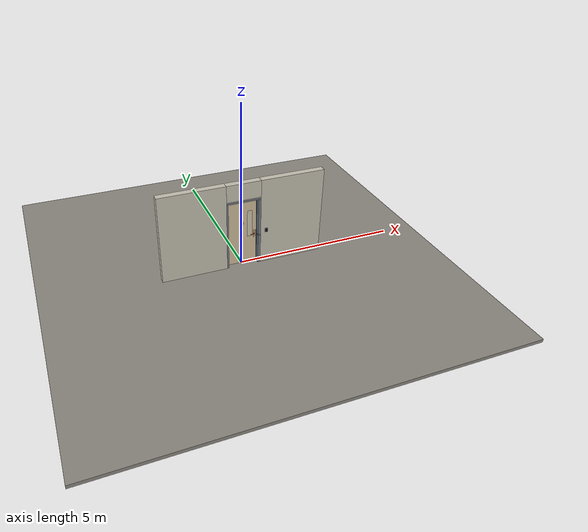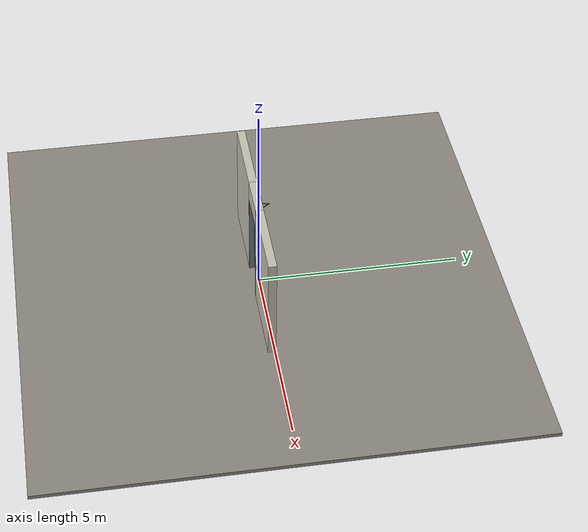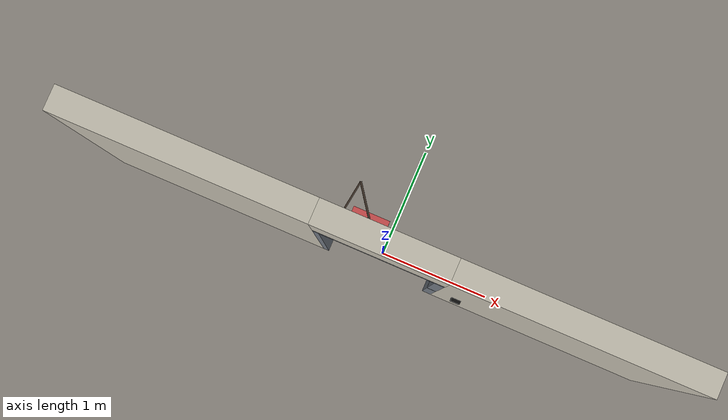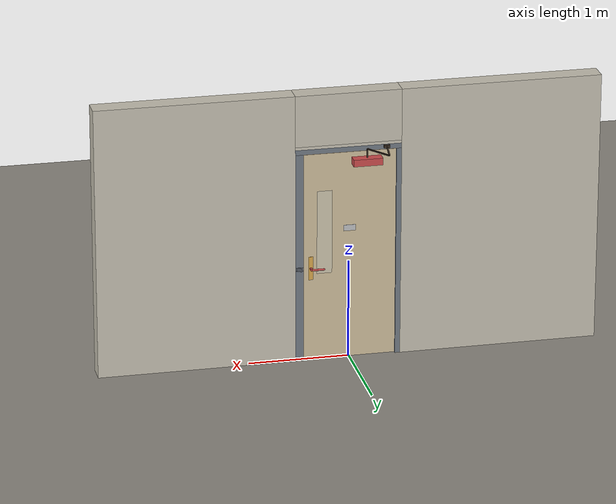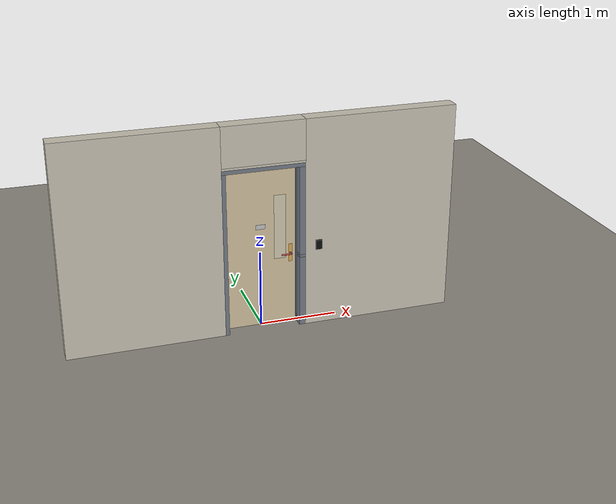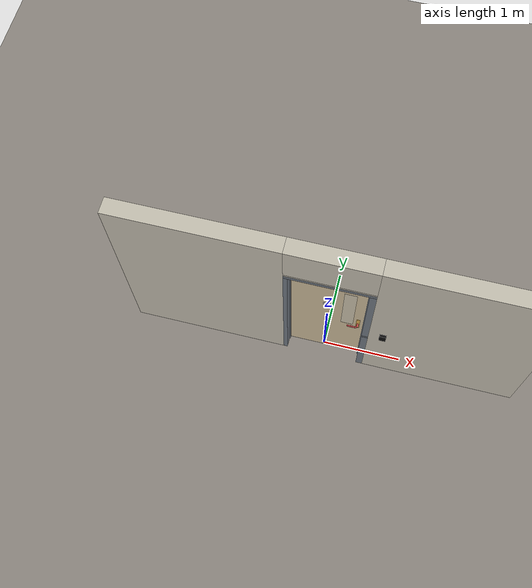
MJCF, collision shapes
<?xml version="1.0" ?>
<mujoco model="db0904_swing_single_full">
  <compiler angle="radian" meshdir="../../hardware" texturedir="../../textures" autolimits="true" inertiafromgeom="false"/>
  <option timestep="0.002" integrator="implicitfast" cone="elliptic" impratio="10" noslip_iterations="3">
    <flag multiccd="enable"/>
  </option>
  <size memory="16M"/>
  <default>
    <geom condim="4" solref="0.005 1" solimp="0.95 0.99 0.001"/>
    <joint solreflimit="0.005 1" solimplimit="0.95 0.99 0.001"/>
    <tendon solreflimit="0.005 1"/>
    <equality solref="0.002 1"/>
  </default>
  <visual>
    <headlight ambient="0.4 0.4 0.4" diffuse="0.7 0.7 0.7" specular="0.2 0.2 0.2"/>
    <quality shadowsize="4096"/>
    <map znear="0.01" zfar="60"/>
  </visual>
  <asset>
    <mesh name="closer_body_fdc4667657" file="closer_body_fdc4667657.obj"/>
    <mesh name="coat_hook_d622d37ad0" file="coat_hook_d622d37ad0.obj"/>
    <mesh name="hinge_e22b26c0c1" file="hinge_e22b26c0c1.obj"/>
    <mesh name="hinge_jamb_e1d088f8dc" file="hinge_jamb_e1d088f8dc.obj"/>
    <mesh name="lever_6fbb1e9593" file="lever_6fbb1e9593.obj"/>
    <material name="mat_floor" rgba="0.55 0.53 0.5 1" specular="0.2" shininess="0.15" reflectance="0"/>
    <material name="mat_wall" rgba="0.78 0.76 0.7 1" specular="0.2" shininess="0.1" reflectance="0"/>
    <material name="mat_leaf" rgba="0.82 0.75 0.62 1" specular="0.2" shininess="0.5" reflectance="0"/>
    <material name="mat_glass" rgba="0.85 0.92 0.95 0.25" specular="0.2" shininess="0.95" reflectance="0.1"/>
    <material name="mat_hinge" rgba="0.65 0.66 0.68 1" specular="0.74" shininess="0.5" reflectance="0.36"/>
    <material name="mat_op_brass" rgba="0.85 0.66 0.3 1" specular="0.8" shininess="0.75" reflectance="0.4"/>
    <material name="mat_trim" rgba="0.85 0.66 0.3 1" specular="0.8" shininess="0.75" reflectance="0.4"/>
    <material name="mat_bolt" rgba="0.85 0.66 0.3 1" specular="0.8" shininess="0.75" reflectance="0.4"/>
    <material name="mat_frame" rgba="0.45 0.48 0.52 1" specular="0.32" shininess="0.6" reflectance="0.08"/>
    <material name="mat_seal" rgba="0.1 0.1 0.1 1" specular="0.2" shininess="0.1" reflectance="0"/>
    <material name="mat_closer" rgba="0.22 0.17 0.13 1" specular="0.8" shininess="0.6" reflectance="0.4"/>
    <material name="mat_hook" rgba="0.9 0.9 0.92 1" specular="0.8" shininess="0.9" reflectance="0.4"/>
    <material name="mat_sign" rgba="0.75 0.76 0.77 1" specular="0.8" shininess="0.65" reflectance="0.4"/>
    <material name="mat_wallreader" rgba="0.05 0.05 0.05 1" specular="0.38" shininess="0.3" reflectance="0.12"/>
    <texture name="skybox" type="skybox" builtin="gradient" rgb1="0.6 0.7 0.85" rgb2="0.9 0.92 0.95" width="256" height="256"/>
  </asset>
  <worldbody>
    <light name="sun" pos="1.5 -2.5 4" dir="-0.3 0.5 -0.8" directional="true" diffuse="0.8 0.8 0.8" specular="0.3 0.3 0.3" castshadow="true"/>
    <light name="fill" pos="-1.5 2.5 3" dir="0.3 -0.5 -0.7" directional="true" diffuse="0.35 0.35 0.4" castshadow="false"/>
    <camera name="robot_view" pos="0 -2.708813 1.812087" xyaxes="1 0 0 0 0.26963 0.962964" fovy="52"/>
    <camera name="far_view" pos="0 2.566812 1.812087" xyaxes="-1 0 0 0 -0.26963 0.962964" fovy="52"/>
    <camera name="iso" pos="2.004737 -2.286763 2.234138" xyaxes="0.741536 0.670913 0 -0.242917 0.268487 0.932151" fovy="46"/>
    <camera name="detail_handle" pos="0.4625 -0.877 1.245" xyaxes="0.97561 0.219512 0 -0.070934 0.315262 0.94635" fovy="38"/>
    <geom name="floor" type="box" size="6 6 0.05" pos="0 0 -0.05" material="mat_floor" group="0" contype="1" conaffinity="1" friction="0.8 0.005 0.0001" density="2400"/>
    <geom name="wall_left" type="box" size="0.99475 0.1 1.3735" pos="-1.50525 -0.071 1.3735" material="mat_wall" group="0" contype="1" conaffinity="1" friction="0.6 0.005 0.0001" density="800"/>
    <geom name="wall_right" type="box" size="0.97975 0.1 1.3735" pos="1.52025 -0.071 1.3735" material="mat_wall" group="0" contype="1" conaffinity="1" friction="0.6 0.005 0.0001" density="800"/>
    <geom name="wall_header" type="box" size="0.5255 0.1 0.26" pos="0.015 -0.071 2.487" material="mat_wall" group="0" contype="1" conaffinity="1" friction="0.6 0.005 0.0001" density="800"/>
    <geom name="hinge_0_jamb" type="mesh" mesh="hinge_jamb_e1d088f8dc" pos="-0.4575 0.029 0.259" quat="0 1 0 0" material="mat_hinge" group="1" contype="0" conaffinity="0" density="7850"/>
    <geom name="hinge_1_jamb" type="mesh" mesh="hinge_jamb_e1d088f8dc" pos="-0.4575 0.029 1.076" quat="0 1 0 0" material="mat_hinge" group="1" contype="0" conaffinity="0" density="7850"/>
    <geom name="hinge_2_jamb" type="mesh" mesh="hinge_jamb_e1d088f8dc" pos="-0.4575 0.029 1.963" quat="0 1 0 0" material="mat_hinge" group="1" contype="0" conaffinity="0" density="7850"/>
    <geom name="jamb_hinge" type="box" size="0.025 0.1 1.0735" pos="-0.4855 -0.071 1.0735" material="mat_frame" group="0" contype="1" conaffinity="1" friction="0.6 0.005 0.0001" density="300"/>
    <geom name="strike_965_wall_n" type="box" size="0.04 0.08075 0.0183" pos="0.5005 -0.09025 0.965" material="mat_frame" group="0" contype="1" conaffinity="1" friction="0.6 0.005 0.0001" density="300"/>
    <geom name="strike_965_wall_p" type="box" size="0.04 0.008 0.0183" pos="0.5005 0.0175 0.965" material="mat_frame" group="0" contype="1" conaffinity="1" friction="0.6 0.005 0.0001" density="300"/>
    <geom name="strike_965_ramp" type="box" size="0.04 0.018028 0.0183" pos="0.503782 0.018312 0.965" quat="0.957092 0 0 -0.289784" material="mat_frame" group="0" contype="1" conaffinity="1" friction="0.12 0.005 0.0001" density="300"/>
    <geom name="strike_965_back" type="box" size="0.0285 0.0095 0.0183" pos="0.512 0 0.965" material="mat_frame" group="0" contype="1" conaffinity="1" friction="0.6 0.005 0.0001" density="300"/>
    <geom name="jamb_strike_0" type="box" size="0.04 0.1 0.47335" pos="0.5005 -0.071 0.47335" material="mat_frame" group="0" contype="1" conaffinity="1" friction="0.6 0.005 0.0001" density="300"/>
    <geom name="jamb_strike_1" type="box" size="0.04 0.1 0.58185" pos="0.5005 -0.071 1.56515" material="mat_frame" group="0" contype="1" conaffinity="1" friction="0.6 0.005 0.0001" density="300"/>
    <geom name="jamb_head" type="box" size="0.5255 0.1 0.025" pos="0.015 -0.071 2.172" material="mat_frame" group="0" contype="1" conaffinity="1" friction="0.6 0.005 0.0001" density="300"/>
    <geom name="head_stud" type="box" size="0.5255 0.1 0.015" pos="0.015 -0.071 2.212" material="mat_wall" group="0" contype="1" conaffinity="1" friction="0.6 0.005 0.0001" density="500"/>
    <geom name="stop_hinge" type="box" size="0.0055 0.016 1.0735" pos="-0.455 -0.0385 1.0735" material="mat_frame" group="0" contype="1" conaffinity="1" friction="0.6 0.005 0.0001" density="300"/>
    <geom name="stop_strike" type="box" size="0.0055 0.016 1.0735" pos="0.455 -0.0385 1.0735" material="mat_frame" group="0" contype="1" conaffinity="1" friction="0.6 0.005 0.0001" density="300"/>
    <geom name="stop_head" type="box" size="0.4605 0.016 0.0055" pos="0 -0.0385 2.1415" material="mat_frame" group="0" contype="1" conaffinity="1" friction="0.6 0.005 0.0001" density="300"/>
    <geom name="seal_hinge" type="box" size="0.004 0.004 1.0735" pos="-0.4575 -0.026 1.0735" material="mat_seal" group="1" contype="0" conaffinity="0" density="1100"/>
    <geom name="seal_strike" type="box" size="0.004 0.004 1.0735" pos="0.4575 -0.026 1.0735" material="mat_seal" group="1" contype="0" conaffinity="0" density="1100"/>
    <geom name="seal_head" type="box" size="0.4405 0.004 0.008" pos="0 -0.026 2.135" material="mat_seal" group="1" contype="0" conaffinity="0" density="1100"/>
    <geom name="closer_bracket" type="box" size="0.03 0.012 0.014" pos="-0.3605 0.041 2.177" material="mat_closer" group="1" contype="0" conaffinity="0" density="2700"/>
    <geom name="wall_reader" type="box" size="0.04 0.015 0.06" pos="0.7105 -0.186 1.1" material="mat_wallreader" group="0" contype="1" conaffinity="1" friction="0.6 0.005 0.0001" density="1000"/>
    <site name="approach_point" pos="0 -1.5 0" quat="1 0 0 0" size="0.05" rgba="0.2 0.9 0.2 0.5" group="4"/>
    <site name="goal_point" pos="0 1.5 0" quat="1 0 0 0" size="0.05" rgba="0.2 0.9 0.2 0.5" group="4"/>
    <site name="door_plane_center" pos="0 0 1.0735" quat="1 0 0 0" size="0.02" rgba="0.2 0.9 0.2 0.5" group="4"/>
    <body name="leaf" pos="-0.4605 0 0">
      <inertial pos="0.422082 0.015687 1.287452" mass="61.341632" quat="-0.471813 0.494982 0.517028 0.514847" diaginertia="3.733435802 28.26201293 31.891730895"/>
      <joint name="leaf_hinge" type="hinge" axis="0 0 1" pos="0.003 0.029 0" limited="true" range="0 1.745329" solreflimit="0.02 1" damping="12.268966" frictionloss="1.680703" stiffness="14.845973" springref="-1.978988" armature="0.02"/>
      <geom name="leaf_slab" type="box" size="0.457 0.022 1.067" pos="0.46 0 1.076" material="mat_leaf" group="0" contype="1" conaffinity="1" friction="0.4 0.005 0.0001" density="1"/>
      <geom name="leaf_glass_0" type="box" size="0.075 0.0228 0.4268" pos="0.71146 0 1.33208" material="mat_glass" group="1" contype="0" conaffinity="0" density="1"/>
      <geom name="hinge_0" type="mesh" mesh="hinge_e22b26c0c1" pos="0.003 0.029 0.259" quat="0 1 0 0" material="mat_hinge" group="1" contype="0" conaffinity="0" density="7850"/>
      <geom name="hinge_1" type="mesh" mesh="hinge_e22b26c0c1" pos="0.003 0.029 1.076" quat="0 1 0 0" material="mat_hinge" group="1" contype="0" conaffinity="0" density="7850"/>
      <geom name="hinge_2" type="mesh" mesh="hinge_e22b26c0c1" pos="0.003 0.029 1.963" quat="0 1 0 0" material="mat_hinge" group="1" contype="0" conaffinity="0" density="7850"/>
      <geom name="leaf_handle_escutcheon_n" type="box" size="0.0225 0.0015 0.12" pos="0.847 -0.0235 0.965" material="mat_op_brass" group="1" contype="0" conaffinity="0" density="3000"/>
      <geom name="leaf_handle_escutcheon_p" type="box" size="0.0225 0.0015 0.12" pos="0.847 0.0235 0.965" material="mat_op_brass" group="1" contype="0" conaffinity="0" density="3000"/>
      <geom name="leaf_latch_bolt_faceplate" type="box" size="0.0006 0.014 0.0283" pos="0.9164 0 0.965" material="mat_bolt" group="1" contype="0" conaffinity="0" density="8500"/>
      <geom name="closer_body" type="mesh" mesh="closer_body_fdc4667657" pos="0.3 0.022 2.054" quat="-0.707107 0.707107 0 0" material="mat_closer" group="1" contype="0" conaffinity="0" density="2000"/>
      <geom name="closer_body_col" type="box" size="0.145 0.05 0.035" pos="0.3 0.072 2.054" material="mat_closer" group="3" contype="1" conaffinity="1" rgba="0.8 0.3 0.3 0.25" friction="0.6 0.005 0.0001" density="2000"/>
      <geom name="closer_pinion_shaft" type="cylinder" size="0.008 0.0615" pos="0.3 0.072 2.1155" material="mat_closer" group="1" contype="0" conaffinity="0" density="2700"/>
      <geom name="coat_hook" type="mesh" mesh="coat_hook_d622d37ad0" pos="0.46 0.022 1.793" quat="-0.707107 0.707107 0 0" material="mat_hook" group="2" contype="0" conaffinity="0" density="7000"/>
      <geom name="sign_push" type="box" size="0.06 0.001 0.03" pos="0.46 -0.023 1.359" material="mat_sign" group="2" contype="0" conaffinity="0" density="7900"/>
      <geom name="sign_pull" type="box" size="0.06 0.001 0.03" pos="0.46 0.023 1.359" material="mat_sign" group="2" contype="0" conaffinity="0" density="7900"/>
      <site name="leaf_edge_mid" pos="0.917 0 1.067" quat="1 0 0 0" size="0.02" rgba="0.2 0.9 0.2 0.5" group="4"/>
      <body name="leaf_handle" pos="0.847 0 0.965">
        <inertial pos="-0.040022 0 0" mass="0.836698" quat="0.707107 0 0 -0.707107" diaginertia="0.001688823 0.003812607 0.00545529"/>
        <joint name="leaf_handle_hinge" type="hinge" axis="0 -1 0" limited="true" range="0 0.7" damping="0.270116" frictionloss="0.064" stiffness="1.4" springref="-0.428571" armature="0.01"/>
        <geom name="leaf_handle_spindle" type="cylinder" size="0.006 0.034" pos="0 0 0" quat="0.707107 -0.707107 0 0" material="mat_op_brass" group="1" contype="0" conaffinity="0" density="7850"/>
        <geom name="leaf_handle_lever_n" type="mesh" mesh="lever_6fbb1e9593" pos="0 -0.022 0" quat="0.707107 0.707107 0 0" material="mat_op_brass" group="1" contype="0" conaffinity="0" density="3000"/>
        <geom name="leaf_handle_lever_col_n" type="capsule" size="0.01 0.055" pos="-0.065 -0.077 0" quat="0.707107 0 -0.707107 0" material="mat_op_brass" group="3" contype="1" conaffinity="1" rgba="0.8 0.3 0.3 0.25" friction="0.7 0.01 0.0001" density="3000"/>
        <geom name="leaf_handle_hub_col_n" type="cylinder" size="0.012 0.022" pos="0 -0.052 0" quat="0.707107 -0.707107 0 0" material="mat_op_brass" group="3" contype="1" conaffinity="1" rgba="0.8 0.3 0.3 0.25" friction="0.6 0.005 0.0001" density="3000"/>
        <geom name="leaf_handle_lever_p" type="mesh" mesh="lever_6fbb1e9593" pos="0 0.022 0" quat="-0.707107 0.707107 0 0" material="mat_op_brass" group="1" contype="0" conaffinity="0" density="3000"/>
        <geom name="leaf_handle_lever_col_p" type="capsule" size="0.01 0.055" pos="-0.065 0.077 0" quat="0.707107 0 -0.707107 0" material="mat_op_brass" group="3" contype="1" conaffinity="1" rgba="0.8 0.3 0.3 0.25" friction="0.7 0.01 0.0001" density="3000"/>
        <geom name="leaf_handle_hub_col_p" type="cylinder" size="0.012 0.022" pos="0 0.052 0" quat="0.707107 -0.707107 0 0" material="mat_op_brass" group="3" contype="1" conaffinity="1" rgba="0.8 0.3 0.3 0.25" friction="0.6 0.005 0.0001" density="3000"/>
        <site name="leaf_handle_grip_n" pos="-0.104 -0.077 0" quat="1 0 0 0" size="0.012" rgba="0.2 0.9 0.2 0.5" group="4"/>
        <site name="leaf_handle_grip_p" pos="-0.104 0.077 0" quat="1 0 0 0" size="0.012" rgba="0.2 0.9 0.2 0.5" group="4"/>
      </body>
      <body name="leaf_latch_bolt" pos="0.917 0 0.965">
        <inertial pos="-0.0055 0 0" mass="0.074627" quat="0.92388 -0.382683 0 0" diaginertia="0.000002271 0.000013255 0.000013255"/>
        <joint name="leaf_latch_bolt_slide" type="slide" axis="-1 0 0" limited="true" range="0 0.019" damping="2" frictionloss="0.3" stiffness="600" springref="-0.01" armature="0.1"/>
        <geom name="leaf_latch_bolt_capsule" type="capsule" size="0.008 0.0165" pos="-0.0055 0 0" quat="0.707107 0 0.707107 0" material="mat_bolt" group="0" contype="1" conaffinity="1" friction="0.2 0.005 0.0001" density="8500"/>
      </body>
      <body name="closer_arm_main" pos="0.3 0.072 2.177" quat="0.454107 0 0 0.890947">
        <inertial pos="0.14 0 0" mass="0.12096" quat="1 0 0 0" diaginertia="0.000003588 0.00079128 0.000792852"/>
        <joint name="closer_pinion" type="hinge" axis="0 0 1" limited="false" damping="0.01" armature="0.002"/>
        <geom name="closer_arm_main_geom" type="box" size="0.14 0.008 0.005" pos="0.14 0 0" material="mat_closer" group="1" contype="0" conaffinity="0" density="2700"/>
        <body name="closer_arm_fore" pos="0.28 0 0" quat="-0.373215 0 0 -0.927745">
          <inertial pos="0.128088 0 0" mass="0.076531" quat="1 0 0 0" diaginertia="0.000001771 0.000437665 0.000438201"/>
          <joint name="closer_elbow" type="hinge" axis="0 0 1" limited="false" damping="0.01" armature="0.002"/>
          <geom name="closer_arm_fore_geom" type="box" size="0.1125 0.007 0.004" pos="0.1125 0 0" material="mat_closer" group="1" contype="0" conaffinity="0" density="2700"/>
          <geom name="closer_fore_neck" type="box" size="0.0175 0.003 0.003" pos="0.2425 0 0" material="mat_closer" group="1" contype="0" conaffinity="0" density="2700"/>
          <geom name="closer_fore_pivot" type="cylinder" size="0.005 0.012" pos="0.26 0 0" material="mat_closer" group="1" contype="0" conaffinity="0" density="2700"/>
        </body>
      </body>
    </body>
  </worldbody>
  <tendon>
    <fixed name="leaf_latch_bolt_coupling" limited="true" range="0 10">
      <joint joint="leaf_latch_bolt_slide" coef="1"/>
      <joint joint="leaf_handle_hinge" coef="-0.028788"/>
    </fixed>
  </tendon>
  <equality>
    <connect name="closer_arm_connect" body1="closer_arm_fore" body2="world" anchor="0.26 0 0" active="true"/>
  </equality>
  <contact>
    <exclude body1="closer_arm_main" body2="leaf"/>
    <exclude body1="closer_arm_fore" body2="leaf"/>
    <exclude body1="closer_arm_main" body2="closer_arm_fore"/>
  </contact>
  <sensor>
    <jointpos name="leaf_hinge_pos" joint="leaf_hinge"/>
    <jointvel name="leaf_hinge_vel" joint="leaf_hinge"/>
    <jointpos name="leaf_handle_hinge_pos" joint="leaf_handle_hinge"/>
    <jointvel name="leaf_handle_hinge_vel" joint="leaf_handle_hinge"/>
    <jointpos name="leaf_latch_bolt_slide_pos" joint="leaf_latch_bolt_slide"/>
    <jointvel name="leaf_latch_bolt_slide_vel" joint="leaf_latch_bolt_slide"/>
  </sensor>
</mujoco>
